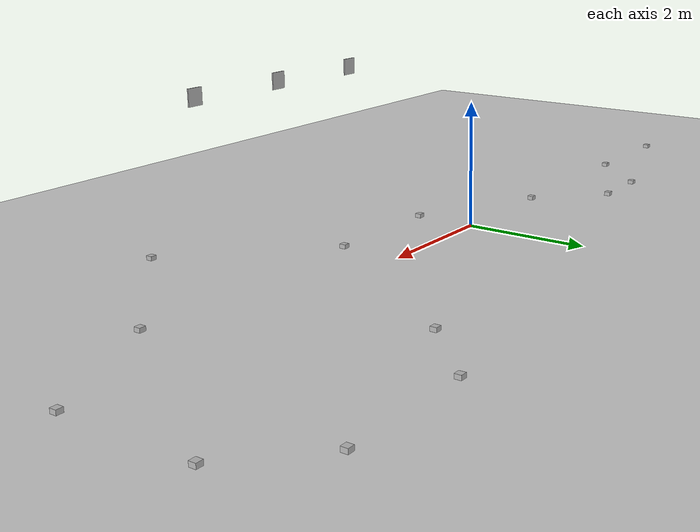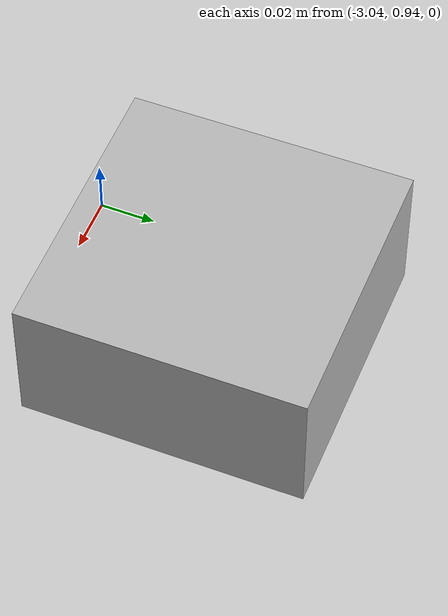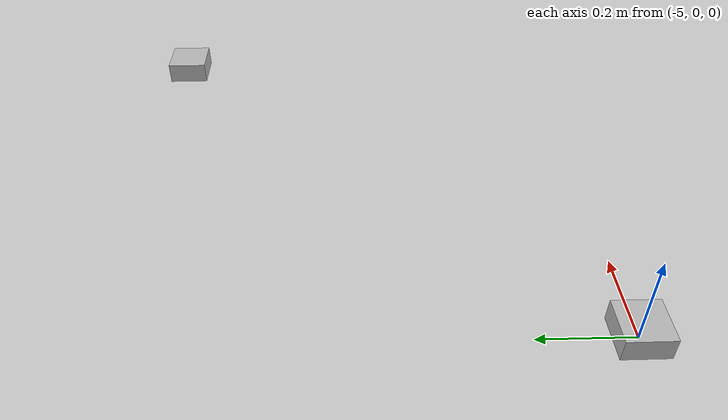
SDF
<sdf version="1.4">
 <world name="DroneTest">
  <light name="sun" type="directional">
   <pose>-9 0 10 0 -0 0</pose>
   <diffuse>0.8 0.8 0.8 1</diffuse>
   <specular>0.2 0.2 0.2 1</specular>
   <attenuation>
    <range>1000</range>
    <constant>0.9</constant>
    <linear>0.01</linear>
    <quadratic>0.001</quadratic>
   </attenuation>
   <direction>0.5 -0.3 -0.9</direction>
  </light>
  <model name="ground_plane">
   <static>1</static>
   <link name="link">
    <collision name="collision">
     <geometry><plane><normal>0 0 1</normal><size>100 100</size></plane></geometry>
     <surface><friction><ode><mu>100</mu><mu2>50</mu2></ode></friction></surface>
    </collision>
    <visual name="visual">
     <cast_shadows>0</cast_shadows>
     <geometry><plane><normal>0 0 1</normal><size>100 100</size></plane></geometry>
     <material>
      <script><uri>file://media/materials/scripts/gazebo.material</uri><name>Gazebo/Grey</name></script>
     </material>
    </visual>
    <velocity_decay><linear>0</linear><angular>0</angular></velocity_decay>
   </link>
  </model>
  <model name="tag_0">
   <pose>-2 -4 2 -1.5707 -1.5707 0</pose>
   <static>true</static>
   <link name="link">
    <collision name="collision">
     <geometry><box><size>0.300000 0.3000000 0.020000</size></box></geometry>
    </collision>
    <visual name="visual">
     <geometry><box><size>0.300000 0.3000000 0.020000</size></box></geometry>
     <material>
      <script><uri>file://tags_material/scripts/tags.material</uri><name>Tag36_11_00000</name></script>
     </material>
    </visual>
   </link>
   <static>0</static>
  </model>
  <model name="tag_1">
   <pose>0 -4 2 -1.5707 -1.5707 0</pose>
   <static>true</static>
   <link name="link">
    <collision name="collision">
     <geometry><box><size>0.300000 0.3000000 0.020000</size></box></geometry>
    </collision>
    <visual name="visual">
     <geometry><box><size>0.300000 0.3000000 0.020000</size></box></geometry>
     <material>
      <script><uri>file://tags_material/scripts/tags.material</uri><name>Tag36_11_00001</name></script>
     </material>
    </visual>
   </link>
   <static>0</static>
  </model>
  <model name="tag_2">
   <pose>2 -4 2 -1.5707 -1.57070 0</pose>
   <static>true</static>
   <link name="link">
    <collision name="collision">
     <geometry><box><size>0.300000 0.3000000 0.020000</size></box></geometry>
    </collision>
    <visual name="visual">
     <geometry><box><size>0.300000 0.3000000 0.020000</size></box></geometry>
     <material>
      <script><uri>file://tags_material/scripts/tags.material</uri><name>Tag36_11_00002</name></script>
     </material>
    </visual>
   </link>
   <static>0</static>
  </model>
  <model name="beacon_0">
   <pose>-7 0 0 0 0 0</pose>
   <static>true</static>
   <link name="link">
    <visual name="visual"><geometry><box><size>0.100000 0.100000 0.1000000</size></box></geometry></visual>
   </link>
   <static>0</static>
  </model>
  <model name="beacon_1">
   <pose>-5 0 0 0 0 0</pose>
   <static>true</static>
   <link name="link">
    <visual name="visual"><geometry><box><size>0.100000 0.100000 0.1000000</size></box></geometry></visual>
   </link>
   <static>0</static>
  </model>
  <model name="beacon_2">
   <pose>-4 1 0 0 0 0</pose>
   <static>true</static>
   <link name="link">
    <visual name="visual"><geometry><box><size>0.100000 0.100000 0.1000000</size></box></geometry></visual>
   </link>
   <static>0</static>
  </model>
  <model name="beacon_3">
   <pose>-3 1 0 0 0 0</pose>
   <static>true</static>
   <link name="link">
    <visual name="visual"><geometry><box><size>0.100000 0.100000 0.1000000</size></box></geometry></visual>
   </link>
   <static>0</static>
  </model>
  <model name="beacon_4">
   <pose>-2 0 0 0 0 0</pose>
   <static>true</static>
   <link name="link">
    <visual name="visual"><geometry><box><size>0.100000 0.100000 0.1000000</size></box></geometry></visual>
   </link>
   <static>0</static>
  </model>
  <model name="beacon_5">
   <pose>0 -1 0 0 0 0</pose>
   <static>true</static>
   <link name="link">
    <visual name="visual"><geometry><box><size>0.100000 0.100000 0.1000000</size></box></geometry></visual>
   </link>
   <static>0</static>
  </model>
  <model name="beacon_6">
   <pose>2 -1 0 0 0 0</pose>
   <static>true</static>
   <link name="link">
    <visual name="visual"><geometry><box><size>0.100000 0.100000 0.1000000</size></box></geometry></visual>
   </link>
   <static>0</static>
  </model>
  <model name="beacon_7">
   <pose>4 -3 0 0 0 0</pose>
   <static>true</static>
   <link name="link">
    <visual name="visual"><geometry><box><size>0.100000 0.100000 0.1000000</size></box></geometry></visual>
   </link>
   <static>0</static>
  </model>
  <model name="beacon_8">
   <pose>6 -1 0 0 0 0</pose>
   <static>true</static>
   <link name="link">
    <visual name="visual"><geometry><box><size>0.100000 0.100000 0.1000000</size></box></geometry></visual>
   </link>
   <static>0</static>
  </model>
  <model name="beacon_9">
   <pose>8 0 0 0 0 0</pose>
   <static>true</static>
   <link name="link">
    <visual name="visual"><geometry><box><size>0.100000 0.100000 0.1000000</size></box></geometry></visual>
   </link>
   <static>0</static>
  </model>
  <model name="beacon_9">
   <pose>8 0 0 0 0 0</pose>
   <static>true</static>
   <link name="link">
    <visual name="visual"><geometry><box><size>0.100000 0.100000 0.1000000</size></box></geometry></visual>
   </link>
   <static>0</static>
  </model>
  <model name="beacon_10">
   <pose>8 2 0 0 0 0</pose>
   <static>true</static>
   <link name="link">
    <visual name="visual"><geometry><box><size>0.100000 0.100000 0.1000000</size></box></geometry></visual>
   </link>
   <static>0</static>
  </model>
  <model name="beacon_11">
   <pose>7 3 0 0 0 0</pose>
   <static>true</static>
   <link name="link">
    <visual name="visual"><geometry><box><size>0.100000 0.100000 0.1000000</size></box></geometry></visual>
   </link>
   <static>0</static>
  </model>
  <model name="beacon_12">
   <pose>5 3 0 0 0 0</pose>
   <static>true</static>
   <link name="link">
    <visual name="visual"><geometry><box><size>0.100000 0.100000 0.1000000</size></box></geometry></visual>
   </link>
   <static>0</static>
  </model>
  <model name="beacon_13">
   <pose>4 2 0 0 0 0</pose>
   <static>true</static>
   <link name="link">
    <visual name="visual"><geometry><box><size>0.100000 0.100000 0.1000000</size></box></geometry></visual>
   </link>
   <static>0</static>
  </model>
 </world>
</sdf>
